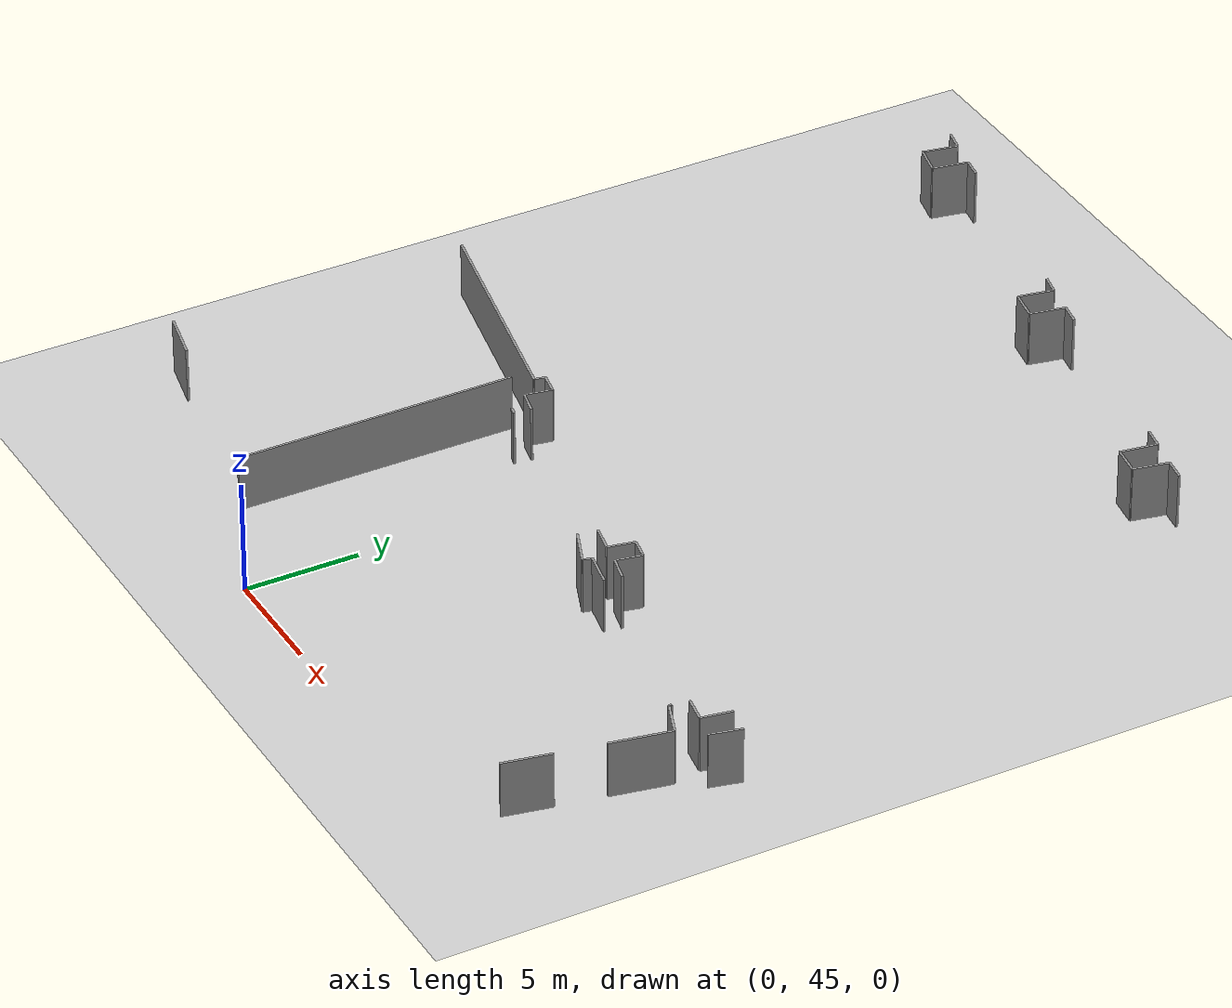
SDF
<sdf version="1.6">
 <world name="default">
  <model name="ground_plane">
   <static>1</static>
   <link name="link">
    <collision name="collision">
     <geometry><plane><normal>0 0 1</normal><size>100 100</size></plane></geometry>
     <surface><friction><ode><mu>100</mu><mu2>50</mu2></ode></friction></surface>
    </collision>
    <visual name="visual">
     <cast_shadows>0</cast_shadows>
     <geometry><plane><normal>0 0 1</normal><size>100 100</size></plane></geometry>
     <material>
      <script><uri>file://media/materials/scripts/gazebo.material</uri><name>Gazebo/Grey</name></script>
     </material>
    </visual>
   </link>
  </model>
  <model name="0510045926_A-40">
   <static>1</static>
   <link name="Wall_396">
    <collision name="Wall_396_Collision">
     <geometry><box><size>0.979121088315 0.1 2.5</size></box></geometry>
     <pose>0.489560544157 0 1.25 0 0 0</pose>
    </collision>
    <visual name="Wall_396_Visual">
     <pose>0.489560544157 0 1.25 0 0 0</pose>
     <geometry><box><size>0.979121088315 0.1 2.5</size></box></geometry>
     <material>
      <script><uri>file://media/materials/scripts/gazebo.material</uri><name>Gazebo/Grey</name></script>
      <ambient>1 1 1 1</ambient>
     </material>
    </visual>
    <pose>121.05876903 -16.189614362 0 0 0 -0.228567106903</pose>
   </link>
   <link name="Wall_397">
    <collision name="Wall_397_Collision">
     <geometry><box><size>1.58214701946 0.1 2.5</size></box></geometry>
     <pose>0.791073509732 0 1.25 0 0 0</pose>
    </collision>
    <visual name="Wall_397_Visual">
     <pose>0.791073509732 0 1.25 0 0 0</pose>
     <geometry><box><size>1.58214701946 0.1 2.5</size></box></geometry>
     <material>
      <script><uri>file://media/materials/scripts/gazebo.material</uri><name>Gazebo/Grey</name></script>
      <ambient>1 1 1 1</ambient>
     </material>
    </visual>
    <pose>122.012425198 -16.4114657038 0 0 0 -1.75979083826</pose>
   </link>
   <link name="Wall_398">
    <collision name="Wall_398_Collision">
     <geometry><box><size>1.3848827191 0.1 2.5</size></box></geometry>
     <pose>0.69244135955 0 1.25 0 0 0</pose>
    </collision>
    <visual name="Wall_398_Visual">
     <pose>0.69244135955 0 1.25 0 0 0</pose>
     <geometry><box><size>1.3848827191 0.1 2.5</size></box></geometry>
     <material>
      <script><uri>file://media/materials/scripts/gazebo.material</uri><name>Gazebo/Grey</name></script>
      <ambient>1 1 1 1</ambient>
     </material>
    </visual>
    <pose>121.715185014 -17.9654404346 0 0 0 -0.228529853331</pose>
   </link>
   <link name="Wall_399">
    <collision name="Wall_399_Collision">
     <geometry><box><size>1.62299770295 0.1 2.5</size></box></geometry>
     <pose>0.811498851477 0 1.25 0 0 0</pose>
    </collision>
    <visual name="Wall_399_Visual">
     <pose>0.811498851477 0 1.25 0 0 0</pose>
     <geometry><box><size>1.62299770295 0.1 2.5</size></box></geometry>
     <material>
      <script><uri>file://media/materials/scripts/gazebo.material</uri><name>Gazebo/Grey</name></script>
      <ambient>1 1 1 1</ambient>
     </material>
    </visual>
    <pose>123.064061479 -18.2791798608 0 0 0 1.38008737363</pose>
   </link>
   <link name="Wall_400">
    <collision name="Wall_400_Collision">
     <geometry><box><size>0.945133003045 0.1 2.5</size></box></geometry>
     <pose>0.472566501523 0 1.25 0 0 0</pose>
    </collision>
    <visual name="Wall_400_Visual">
     <pose>0.472566501523 0 1.25 0 0 0</pose>
     <geometry><box><size>0.945133003045 0.1 2.5</size></box></geometry>
     <material>
      <script><uri>file://media/materials/scripts/gazebo.material</uri><name>Gazebo/Grey</name></script>
      <ambient>1 1 1 1</ambient>
     </material>
    </visual>
    <pose>123.371708877 -16.68560695 0 0 0 -0.177379268131</pose>
   </link>
   <link name="Wall_401">
    <collision name="Wall_401_Collision">
     <geometry><box><size>0.920900919824 0.1 2.5</size></box></geometry>
     <pose>0.460450459912 0 1.25 0 0 0</pose>
    </collision>
    <visual name="Wall_401_Visual">
     <pose>0.460450459912 0 1.25 0 0 0</pose>
     <geometry><box><size>0.920900919824 0.1 2.5</size></box></geometry>
     <material>
      <script><uri>file://media/materials/scripts/gazebo.material</uri><name>Gazebo/Grey</name></script>
      <ambient>1 1 1 1</ambient>
     </material>
    </visual>
    <pose>132.883648617 -18.5175304443 0 0 0 -0.226860827683</pose>
   </link>
   <link name="Wall_402">
    <collision name="Wall_402_Collision">
     <geometry><box><size>1.58827021601 0.1 2.5</size></box></geometry>
     <pose>0.794135108006 0 1.25 0 0 0</pose>
    </collision>
    <visual name="Wall_402_Visual">
     <pose>0.794135108006 0 1.25 0 0 0</pose>
     <geometry><box><size>1.58827021601 0.1 2.5</size></box></geometry>
     <material>
      <script><uri>file://media/materials/scripts/gazebo.material</uri><name>Gazebo/Grey</name></script>
      <ambient>1 1 1 1</ambient>
     </material>
    </visual>
    <pose>133.780953529 -18.7246593858 0 0 0 -1.76540236246</pose>
   </link>
   <link name="Wall_403">
    <collision name="Wall_403_Collision">
     <geometry><box><size>1.38546992874 0.1 2.5</size></box></geometry>
     <pose>0.692734964372 0 1.25 0 0 0</pose>
    </collision>
    <visual name="Wall_403_Visual">
     <pose>0.692734964372 0 1.25 0 0 0</pose>
     <geometry><box><size>1.38546992874 0.1 2.5</size></box></geometry>
     <material>
      <script><uri>file://media/materials/scripts/gazebo.material</uri><name>Gazebo/Grey</name></script>
      <ambient>1 1 1 1</ambient>
     </material>
    </visual>
    <pose>133.4738138 -20.2829493029 0 0 0 -0.177919836759</pose>
   </link>
   <link name="Wall_404">
    <collision name="Wall_404_Collision">
     <geometry><box><size>1.58189206434 0.1 2.5</size></box></geometry>
     <pose>0.79094603217 0 1.25 0 0 0</pose>
    </collision>
    <visual name="Wall_404_Visual">
     <pose>0.79094603217 0 1.25 0 0 0</pose>
     <geometry><box><size>1.58189206434 0.1 2.5</size></box></geometry>
     <material>
      <script><uri>file://media/materials/scripts/gazebo.material</uri><name>Gazebo/Grey</name></script>
      <ambient>1 1 1 1</ambient>
     </material>
    </visual>
    <pose>134.837412665 -20.5281534176 0 0 0 1.37343223625</pose>
   </link>
   <link name="Wall_405">
    <collision name="Wall_405_Collision">
     <geometry><box><size>0.961000741182 0.1 2.5</size></box></geometry>
     <pose>0.480500370591 0 1.25 0 0 0</pose>
    </collision>
    <visual name="Wall_405_Visual">
     <pose>0.480500370591 0 1.25 0 0 0</pose>
     <geometry><box><size>0.961000741182 0.1 2.5</size></box></geometry>
     <material>
      <script><uri>file://media/materials/scripts/gazebo.material</uri><name>Gazebo/Grey</name></script>
      <ambient>1 1 1 1</ambient>
     </material>
    </visual>
    <pose>135.147598408 -18.9769708661 0 0 0 -0.181129250376</pose>
   </link>
   <link name="Wall_406">
    <collision name="Wall_406_Collision">
     <geometry><box><size>0.964587082964 0.1 2.5</size></box></geometry>
     <pose>0.482293541482 0 1.25 0 0 0</pose>
    </collision>
    <visual name="Wall_406_Visual">
     <pose>0.482293541482 0 1.25 0 0 0</pose>
     <geometry><box><size>0.964587082964 0.1 2.5</size></box></geometry>
     <material>
      <script><uri>file://media/materials/scripts/gazebo.material</uri><name>Gazebo/Grey</name></script>
      <ambient>1 1 1 1</ambient>
     </material>
    </visual>
    <pose>144.610548092 -20.8078790225 0 0 0 -0.189550964367</pose>
   </link>
   <link name="Wall_407">
    <collision name="Wall_407_Collision">
     <geometry><box><size>1.64438243996 0.1 2.5</size></box></geometry>
     <pose>0.822191219979 0 1.25 0 0 0</pose>
    </collision>
    <visual name="Wall_407_Visual">
     <pose>0.822191219979 0 1.25 0 0 0</pose>
     <geometry><box><size>1.64438243996 0.1 2.5</size></box></geometry>
     <material>
      <script><uri>file://media/materials/scripts/gazebo.material</uri><name>Gazebo/Grey</name></script>
      <ambient>1 1 1 1</ambient>
     </material>
    </visual>
    <pose>145.557858398 -20.9896245153 0 0 0 -1.72828095774</pose>
   </link>
   <link name="Wall_408">
    <collision name="Wall_408_Collision">
     <geometry><box><size>1.30019802654 0.1 2.5</size></box></geometry>
     <pose>0.650099013268 0 1.25 0 0 0</pose>
    </collision>
    <visual name="Wall_408_Visual">
     <pose>0.650099013268 0 1.25 0 0 0</pose>
     <geometry><box><size>1.30019802654 0.1 2.5</size></box></geometry>
     <material>
      <script><uri>file://media/materials/scripts/gazebo.material</uri><name>Gazebo/Grey</name></script>
      <ambient>1 1 1 1</ambient>
     </material>
    </visual>
    <pose>145.299962559 -22.6136575646 0 0 0 -0.156033510691</pose>
   </link>
   <link name="Wall_409">
    <collision name="Wall_409_Collision">
     <geometry><box><size>1.58504109725 0.1 2.5</size></box></geometry>
     <pose>0.792520548624 0 1.25 0 0 0</pose>
    </collision>
    <visual name="Wall_409_Visual">
     <pose>0.792520548624 0 1.25 0 0 0</pose>
     <geometry><box><size>1.58504109725 0.1 2.5</size></box></geometry>
     <material>
      <script><uri>file://media/materials/scripts/gazebo.material</uri><name>Gazebo/Grey</name></script>
      <ambient>1 1 1 1</ambient>
     </material>
    </visual>
    <pose>146.584365065 -22.8157098164 0 0 0 1.3645125309</pose>
   </link>
   <link name="Wall_410">
    <collision name="Wall_410_Collision">
     <geometry><box><size>0.987049658601 0.1 2.5</size></box></geometry>
     <pose>0.4935248293 0 1.25 0 0 0</pose>
    </collision>
    <visual name="Wall_410_Visual">
     <pose>0.4935248293 0 1.25 0 0 0</pose>
     <geometry><box><size>0.987049658601 0.1 2.5</size></box></geometry>
     <material>
      <script><uri>file://media/materials/scripts/gazebo.material</uri><name>Gazebo/Grey</name></script>
      <ambient>1 1 1 1</ambient>
     </material>
    </visual>
    <pose>146.909019374 -21.2642734305 0 0 0 -0.161428236288</pose>
   </link>
   <link name="Wall_447">
    <collision name="Wall_447_Collision">
     <geometry><box><size>1.42129221453 0.1 2.5</size></box></geometry>
     <pose>0.710646107267 0 1.25 0 0 0</pose>
    </collision>
    <visual name="Wall_447_Visual">
     <pose>0.710646107267 0 1.25 0 0 0</pose>
     <geometry><box><size>1.42129221453 0.1 2.5</size></box></geometry>
     <material>
      <script><uri>file://media/materials/scripts/gazebo.material</uri><name>Gazebo/Grey</name></script>
      <ambient>1 1 1 1</ambient>
     </material>
    </visual>
    <pose>154.096596714 -46.3360134025 0 0 0 1.3370365995</pose>
   </link>
   <link name="Wall_449">
    <collision name="Wall_449_Collision">
     <geometry><box><size>1.36942677811 0.1 2.5</size></box></geometry>
     <pose>0.684713389057 0 1.25 0 0 0</pose>
    </collision>
    <visual name="Wall_449_Visual">
     <pose>0.684713389057 0 1.25 0 0 0</pose>
     <geometry><box><size>1.36942677811 0.1 2.5</size></box></geometry>
     <material>
      <script><uri>file://media/materials/scripts/gazebo.material</uri><name>Gazebo/Grey</name></script>
      <ambient>1 1 1 1</ambient>
     </material>
    </visual>
    <pose>153.262496589 -44.7338101191 0 0 0 -1.73990646569</pose>
   </link>
   <link name="Wall_450">
    <collision name="Wall_450_Collision">
     <geometry><box><size>1.19072889472 0.1 2.5</size></box></geometry>
     <pose>0.595364447361 0 1.25 0 0 0</pose>
    </collision>
    <visual name="Wall_450_Visual">
     <pose>0.595364447361 0 1.25 0 0 0</pose>
     <geometry><box><size>1.19072889472 0.1 2.5</size></box></geometry>
     <material>
      <script><uri>file://media/materials/scripts/gazebo.material</uri><name>Gazebo/Grey</name></script>
      <ambient>1 1 1 1</ambient>
     </material>
    </visual>
    <pose>153.032014875 -46.0837019222 0 0 0 2.97497204901</pose>
   </link>
   <link name="Wall_451">
    <collision name="Wall_451_Collision">
     <geometry><box><size>1.16723756903 0.1 2.5</size></box></geometry>
     <pose>0.583618784517 0 1.25 0 0 0</pose>
    </collision>
    <visual name="Wall_451_Visual">
     <pose>0.583618784517 0 1.25 0 0 0</pose>
     <geometry><box><size>1.16723756903 0.1 2.5</size></box></geometry>
     <material>
      <script><uri>file://media/materials/scripts/gazebo.material</uri><name>Gazebo/Grey</name></script>
      <ambient>1 1 1 1</ambient>
     </material>
    </visual>
    <pose>143.421841188 -44.2588857935 0 0 0 2.90563320895</pose>
   </link>
   <link name="Wall_452">
    <collision name="Wall_452_Collision">
     <geometry><box><size>1.16623301441 0.1 2.5</size></box></geometry>
     <pose>0.583116507206 0 1.25 0 0 0</pose>
    </collision>
    <visual name="Wall_452_Visual">
     <pose>0.583116507206 0 1.25 0 0 0</pose>
     <geometry><box><size>1.16623301441 0.1 2.5</size></box></geometry>
     <material>
      <script><uri>file://media/materials/scripts/gazebo.material</uri><name>Gazebo/Grey</name></script>
      <ambient>1 1 1 1</ambient>
     </material>
    </visual>
    <pose>142.286947196 -43.9860137198 0 0 0 1.36874804942</pose>
   </link>
   <link name="Wall_453">
    <collision name="Wall_453_Collision">
     <geometry><box><size>0.960883435787 0.1 2.5</size></box></geometry>
     <pose>0.480441717894 0 1.25 0 0 0</pose>
    </collision>
    <visual name="Wall_453_Visual">
     <pose>0.480441717894 0 1.25 0 0 0</pose>
     <geometry><box><size>0.960883435787 0.1 2.5</size></box></geometry>
     <material>
      <script><uri>file://media/materials/scripts/gazebo.material</uri><name>Gazebo/Grey</name></script>
      <ambient>1 1 1 1</ambient>
     </material>
    </visual>
    <pose>142.520982593 -42.8435046928 0 0 0 2.95533595224</pose>
   </link>
   <link name="Wall_454">
    <collision name="Wall_454_Collision">
     <geometry><box><size>1.19146312169 0.1 2.5</size></box></geometry>
     <pose>0.595731560847 0 1.25 0 0 0</pose>
    </collision>
    <visual name="Wall_454_Visual">
     <pose>0.595731560847 0 1.25 0 0 0</pose>
     <geometry><box><size>1.19146312169 0.1 2.5</size></box></geometry>
     <material>
      <script><uri>file://media/materials/scripts/gazebo.material</uri><name>Gazebo/Grey</name></script>
      <ambient>1 1 1 1</ambient>
     </material>
    </visual>
    <pose>141.576718301 -42.6655667172 0 0 0 -1.76568499794</pose>
   </link>
   <link name="Wall_455">
    <collision name="Wall_455_Collision">
     <geometry><box><size>1.22989711382 0.1 2.5</size></box></geometry>
     <pose>0.614948556912 0 1.25 0 0 0</pose>
    </collision>
    <visual name="Wall_455_Visual">
     <pose>0.614948556912 0 1.25 0 0 0</pose>
     <geometry><box><size>1.22989711382 0.1 2.5</size></box></geometry>
     <material>
      <script><uri>file://media/materials/scripts/gazebo.material</uri><name>Gazebo/Grey</name></script>
      <ambient>1 1 1 1</ambient>
     </material>
    </visual>
    <pose>141.345982752 -43.8344745309 0 0 0 2.94087807411</pose>
   </link>
   <link name="Wall_456">
    <collision name="Wall_456_Collision">
     <geometry><box><size>1.11966239817 0.1 2.5</size></box></geometry>
     <pose>0.559831199087 0 1.25 0 0 0</pose>
    </collision>
    <visual name="Wall_456_Visual">
     <pose>0.559831199087 0 1.25 0 0 0</pose>
     <geometry><box><size>1.11966239817 0.1 2.5</size></box></geometry>
     <material>
      <script><uri>file://media/materials/scripts/gazebo.material</uri><name>Gazebo/Grey</name></script>
      <ambient>1 1 1 1</ambient>
     </material>
    </visual>
    <pose>131.299721417 -41.9170088144 0 0 0 2.91475982083</pose>
   </link>
   <link name="Wall_457">
    <collision name="Wall_457_Collision">
     <geometry><box><size>1.19211366471 0.1 2.5</size></box></geometry>
     <pose>0.596056832355 0 1.25 0 0 0</pose>
    </collision>
    <visual name="Wall_457_Visual">
     <pose>0.596056832355 0 1.25 0 0 0</pose>
     <geometry><box><size>1.19211366471 0.1 2.5</size></box></geometry>
     <material>
      <script><uri>file://media/materials/scripts/gazebo.material</uri><name>Gazebo/Grey</name></script>
      <ambient>1 1 1 1</ambient>
     </material>
    </visual>
    <pose>130.208740791 -41.6652050031 0 0 0 1.38317244289</pose>
   </link>
   <link name="Wall_458">
    <collision name="Wall_458_Collision">
     <geometry><box><size>0.970467705163 0.1 2.5</size></box></geometry>
     <pose>0.485233852582 0 1.25 0 0 0</pose>
    </collision>
    <visual name="Wall_458_Visual">
     <pose>0.485233852582 0 1.25 0 0 0</pose>
     <geometry><box><size>0.970467705163 0.1 2.5</size></box></geometry>
     <material>
      <script><uri>file://media/materials/scripts/gazebo.material</uri><name>Gazebo/Grey</name></script>
      <ambient>1 1 1 1</ambient>
     </material>
    </visual>
    <pose>130.431099801 -40.494012679 0 0 0 2.96092034476</pose>
   </link>
   <link name="Wall_459">
    <collision name="Wall_459_Collision">
     <geometry><box><size>0.483676669901 0.1 2.5</size></box></geometry>
     <pose>0.24183833495 0 1.25 0 0 0</pose>
    </collision>
    <visual name="Wall_459_Visual">
     <pose>0.24183833495 0 1.25 0 0 0</pose>
     <geometry><box><size>0.483676669901 0.1 2.5</size></box></geometry>
     <material>
      <script><uri>file://media/materials/scripts/gazebo.material</uri><name>Gazebo/Grey</name></script>
      <ambient>1 1 1 1</ambient>
     </material>
    </visual>
    <pose>129.476428295 -40.3196283863 0 0 0 -1.76407498936</pose>
   </link>
   <link name="Wall_460">
    <collision name="Wall_460_Collision">
     <geometry><box><size>10.6872291095 0.1 2.5</size></box></geometry>
     <pose>5.34361455477 0 1.25 0 0 0</pose>
    </collision>
    <visual name="Wall_460_Visual">
     <pose>5.34361455477 0 1.25 0 0 0</pose>
     <geometry><box><size>10.6872291095 0.1 2.5</size></box></geometry>
     <material>
      <script><uri>file://media/materials/scripts/gazebo.material</uri><name>Gazebo/Grey</name></script>
      <ambient>1 1 1 1</ambient>
     </material>
    </visual>
    <pose>129.383524873 -40.7942988774 0 0 0 2.94681488881</pose>
   </link>
   <link name="Wall_537">
    <collision name="Wall_537_Collision">
     <geometry><box><size>0.374579640417 0.1 2.5</size></box></geometry>
     <pose>0.187289820208 0 1.25 0 0 0</pose>
    </collision>
    <visual name="Wall_537_Visual">
     <pose>0.187289820208 0 1.25 0 0 0</pose>
     <geometry><box><size>0.374579640417 0.1 2.5</size></box></geometry>
     <material>
      <script><uri>file://media/materials/scripts/gazebo.material</uri><name>Gazebo/Grey</name></script>
      <ambient>1 1 1 1</ambient>
     </material>
    </visual>
    <pose>130.832919795 -42.5574332257 0 0 0 -0.273087009578</pose>
   </link>
   <link name="Wall_538">
    <collision name="Wall_538_Collision">
     <geometry><box><size>1.78429879363 0.1 2.5</size></box></geometry>
     <pose>0.892149396817 0 1.25 0 0 0</pose>
    </collision>
    <visual name="Wall_538_Visual">
     <pose>0.892149396817 0 1.25 0 0 0</pose>
     <geometry><box><size>1.78429879363 0.1 2.5</size></box></geometry>
     <material>
      <script><uri>file://media/materials/scripts/gazebo.material</uri><name>Gazebo/Grey</name></script>
      <ambient>1 1 1 1</ambient>
     </material>
    </visual>
    <pose>139.991268094 -44.4320009138 0 0 0 -0.376121135502</pose>
   </link>
   <link name="Wall_539">
    <collision name="Wall_539_Collision">
     <geometry><box><size>0.41050812992 0.1 2.5</size></box></geometry>
     <pose>0.20525406496 0 1.25 0 0 0</pose>
    </collision>
    <visual name="Wall_539_Visual">
     <pose>0.20525406496 0 1.25 0 0 0</pose>
     <geometry><box><size>0.41050812992 0.1 2.5</size></box></geometry>
     <material>
      <script><uri>file://media/materials/scripts/gazebo.material</uri><name>Gazebo/Grey</name></script>
      <ambient>1 1 1 1</ambient>
     </material>
    </visual>
    <pose>141.650837971 -45.0874015598 0 0 0 1.32596763367</pose>
   </link>
   <link name="Wall_540">
    <collision name="Wall_540_Collision">
     <geometry><box><size>1.55577047817 0.1 2.5</size></box></geometry>
     <pose>0.777885239083 0 1.25 0 0 0</pose>
    </collision>
    <visual name="Wall_540_Visual">
     <pose>0.777885239083 0 1.25 0 0 0</pose>
     <geometry><box><size>1.55577047817 0.1 2.5</size></box></geometry>
     <material>
      <script><uri>file://media/materials/scripts/gazebo.material</uri><name>Gazebo/Grey</name></script>
      <ambient>1 1 1 1</ambient>
     </material>
    </visual>
    <pose>141.75034109 -44.6891352494 0 0 0 -0.193235850065</pose>
   </link>
   <link name="Wall_541">
    <collision name="Wall_541_Collision">
     <geometry><box><size>0.128277110943 0.1 2.5</size></box></geometry>
     <pose>0.0641385554716 0 1.25 0 0 0</pose>
    </collision>
    <visual name="Wall_541_Visual">
     <pose>0.0641385554716 0 1.25 0 0 0</pose>
     <geometry><box><size>0.128277110943 0.1 2.5</size></box></geometry>
     <material>
      <script><uri>file://media/materials/scripts/gazebo.material</uri><name>Gazebo/Grey</name></script>
      <ambient>1 1 1 1</ambient>
     </material>
    </visual>
    <pose>151.771726646 -46.604062621 0 0 0 -1.5331903021</pose>
   </link>
   <link name="Wall_542">
    <collision name="Wall_542_Collision">
     <geometry><box><size>1.62054051776 0.1 2.5</size></box></geometry>
     <pose>0.810270258878 0 1.25 0 0 0</pose>
    </collision>
    <visual name="Wall_542_Visual">
     <pose>0.810270258878 0 1.25 0 0 0</pose>
     <geometry><box><size>1.62054051776 0.1 2.5</size></box></geometry>
     <material>
      <script><uri>file://media/materials/scripts/gazebo.material</uri><name>Gazebo/Grey</name></script>
      <ambient>1 1 1 1</ambient>
     </material>
    </visual>
    <pose>151.776549501 -46.732249037 0 0 0 -0.36922056855</pose>
   </link>
   <link name="Wall_543">
    <collision name="Wall_543_Collision">
     <geometry><box><size>2.65748693278 0.1 2.5</size></box></geometry>
     <pose>1.32874346639 0 1.25 0 0 0</pose>
    </collision>
    <visual name="Wall_543_Visual">
     <pose>1.32874346639 0 1.25 0 0 0</pose>
     <geometry><box><size>2.65748693278 0.1 2.5</size></box></geometry>
     <material>
      <script><uri>file://media/materials/scripts/gazebo.material</uri><name>Gazebo/Grey</name></script>
      <ambient>1 1 1 1</ambient>
     </material>
    </visual>
    <pose>153.287880038 -47.3170836956 0 0 0 -1.76378976458</pose>
   </link>
   <link name="Wall_544">
    <collision name="Wall_544_Collision">
     <geometry><box><size>2.1268970419 0.1 2.5</size></box></geometry>
     <pose>1.06344852095 0 1.25 0 0 0</pose>
    </collision>
    <visual name="Wall_544_Visual">
     <pose>1.06344852095 0 1.25 0 0 0</pose>
     <geometry><box><size>2.1268970419 0.1 2.5</size></box></geometry>
     <material>
      <script><uri>file://media/materials/scripts/gazebo.material</uri><name>Gazebo/Grey</name></script>
      <ambient>1 1 1 1</ambient>
     </material>
    </visual>
    <pose>152.377375732 -52.0125140402 0 0 0 -1.76961962119</pose>
   </link>
   <link name="Wall_987">
    <collision name="Wall_987_Collision">
     <geometry><box><size>12.3597126157 0.1 2.5</size></box></geometry>
     <pose>6.17985630784 0 1.25 0 0 0</pose>
    </collision>
    <visual name="Wall_987_Visual">
     <pose>6.17985630784 0 1.25 0 0 0</pose>
     <geometry><box><size>12.3597126157 0.1 2.5</size></box></geometry>
     <material>
      <script><uri>file://media/materials/scripts/gazebo.material</uri><name>Gazebo/Grey</name></script>
      <ambient>1 1 1 1</ambient>
     </material>
    </visual>
    <pose>128.797928711 -41.5327034007 0 0 0 -1.57157674231</pose>
   </link>
   <link name="Wall_989">
    <collision name="Wall_989_Collision">
     <geometry><box><size>2.34897892739 0.1 2.5</size></box></geometry>
     <pose>1.17448946369 0 1.25 0 0 0</pose>
    </collision>
    <visual name="Wall_989_Visual">
     <pose>1.17448946369 0 1.25 0 0 0</pose>
     <geometry><box><size>2.34897892739 0.1 2.5</size></box></geometry>
     <material>
      <script><uri>file://media/materials/scripts/gazebo.material</uri><name>Gazebo/Grey</name></script>
      <ambient>1 1 1 1</ambient>
     </material>
    </visual>
    <pose>120.686647671 -52.3178769283 0 0 0 2.93701273075</pose>
   </link>
   <pose>-133.95 101.113233661 0 0 0 0</pose>
  </model>
 </world>
</sdf>
